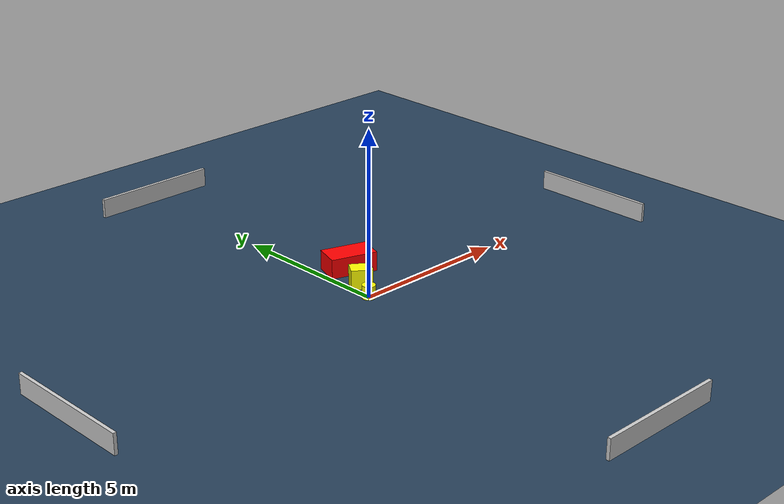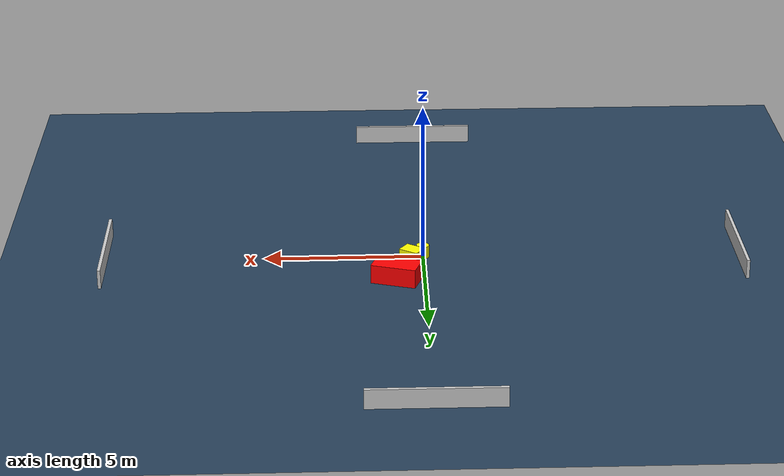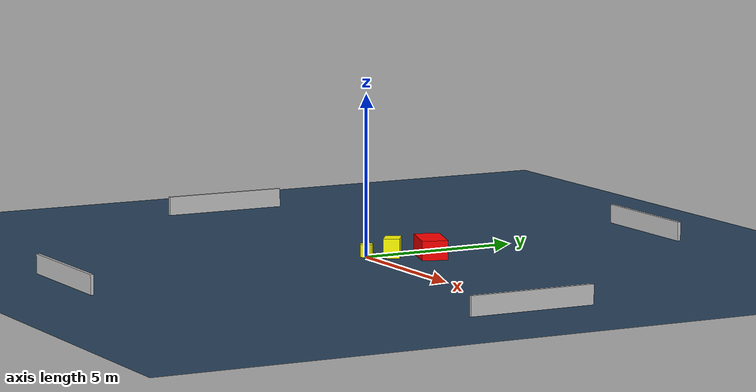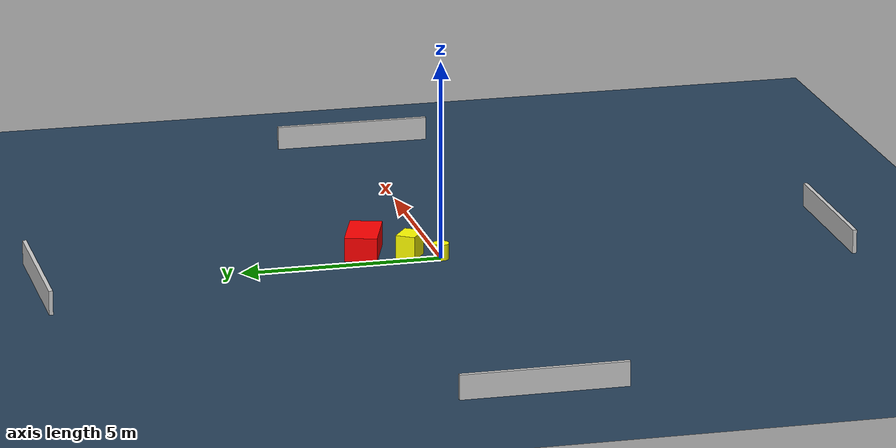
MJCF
<?xml version="1.0" ?>
<mujoco model="generated_environment">
  <option timestep="0.01" integrator="RK4" cone="elliptic"/>
  <default>
    <geom density="1"/>
  </default>
  <asset>
    <texture builtin="gradient" height="3072" name="skybox" rgb1="0.3 0.5 0.7" rgb2="0 0 0" type="skybox" width="512"/>
    <texture builtin="checker" height="300" name="groundplane" rgb1="0.2 0.3 0.4" rgb2="0.1 0.2 0.3" type="2d" width="300"/>
    <material name="groundplane" reflectance="0.2" texrepeat="5 5" texture="groundplane"/>
  </asset>
  <worldbody>
    <light dir="0 0 -1" directional="true" pos="0 0 1.5"/>
    <geom condim="3" friction="0.5 0.005 0.001" material="groundplane" name="floor" pos="0 0 0" size="0 0 0.05" type="plane"/>
    <body name="walls">
      <geom name="wall_1" condim="4" pos="-10.0 0.0 0.3" rgba="0.800000011920929 0.800000011920929 0.800000011920929 1.0" size="0.05 2.0 0.3" type="box"/>
      <geom name="wall_2" condim="4" pos="10.0 0.0 0.3" rgba="0.800000011920929 0.800000011920929 0.800000011920929 1.0" size="0.05 2.0 0.3" type="box"/>
      <geom name="wall_3" condim="4" pos="0.0 -10.0 0.3" rgba="0.800000011920929 0.800000011920929 0.800000011920929 1.0" size="2.0 0.05 0.3" type="box"/>
      <geom name="wall_4" condim="4" pos="0.0 10.0 0.3" rgba="0.800000011920929 0.800000011920929 0.800000011920929 1.0" size="2.0 0.05 0.3" type="box"/>
    </body>
    <body name="robot">
      <joint name="joint_x" type="slide" pos="0 0 0" axis="1 0 0"/>
      <joint name="joint_y" type="slide" pos="0 0 0" axis="0 1 0"/>
      <geom name="robot" type="cylinder" pos="0.0 0.0 0.2" size="0.2 0.2 0.0" mass="5.0" friction="1.0 0.005 0.0001" condim="4" rgba="1.0 1.0 0.0 1.0"/>
    </body>
    <body name="obstacle_1_movable">
      <geom name="obstacle_1_movable" condim="4" pos="0.36184101422920173 0.701536808241099 0.3" euler="0 0 55.83990610180657" friction="0.0 0.005 0.001" rgba="1.0 1.0 0.0 1.0" size="0.24608864991042015 0.321390839221751 0.3" type="box" mass="0.1"/>
      <joint type="free"/>
    </body>
    <body name="obstacle_2_static">
      <geom name="obstacle_2_static" condim="4" pos="0.8733190017992238 1.7538731806269172 0.3" euler="0 0 71.73423102091743" friction="0.0 0.005 0.001" rgba="1.0 0.0 0.0 1.0" size="0.4041042635700657 0.7143560180768949 0.3" type="box"/>
    </body>
  </worldbody>
  <actuator>
    <motor name="actuator_x" joint="joint_x" gear="1" ctrlrange="-1 1"/>
    <motor name="actuator_y" joint="joint_y" gear="1" ctrlrange="-1 1"/>
  </actuator>
</mujoco>
